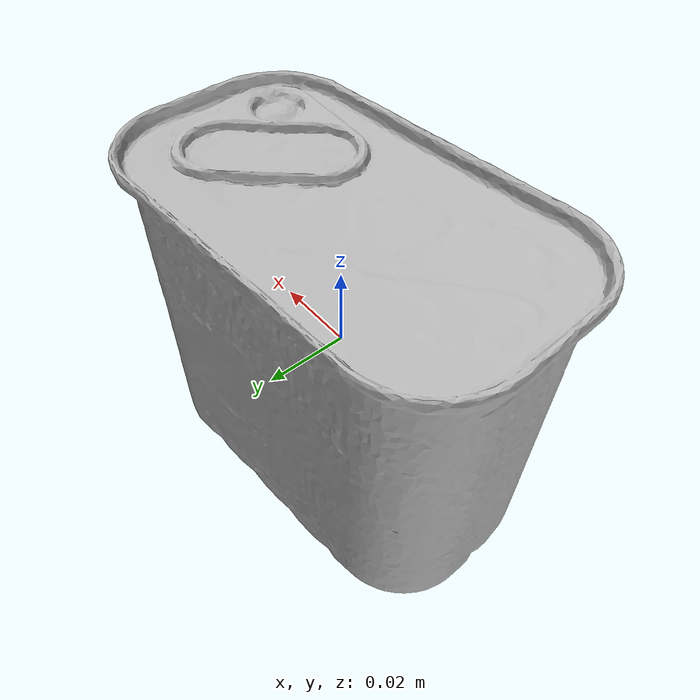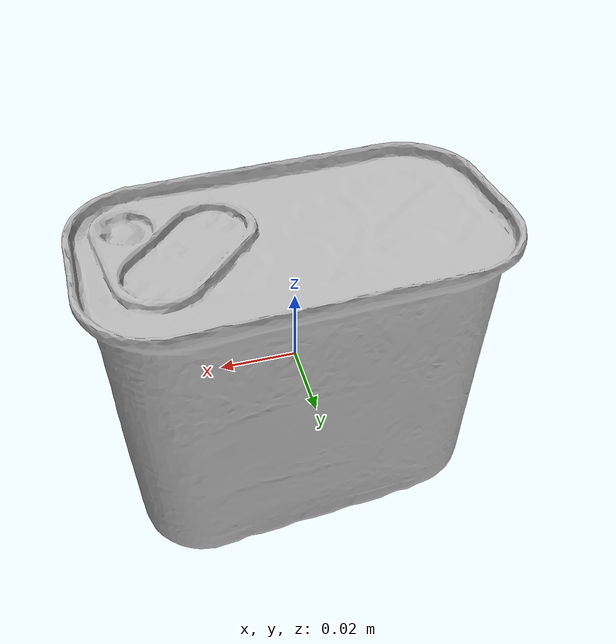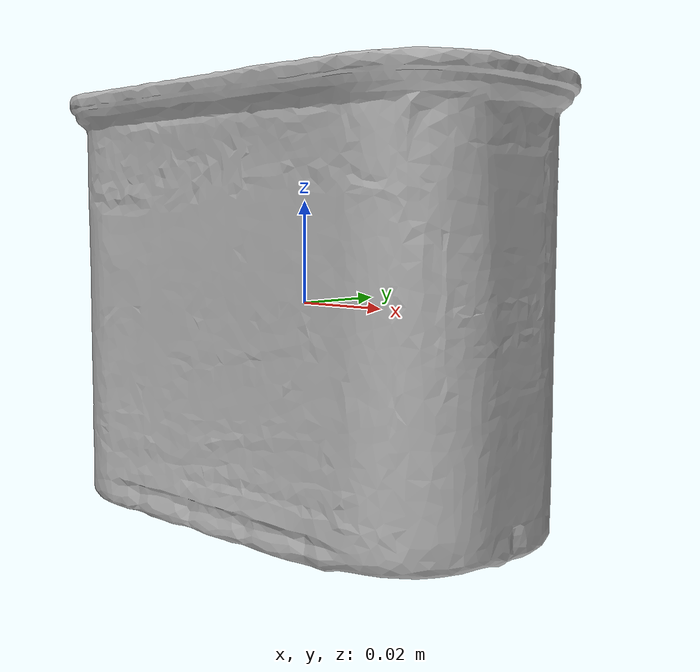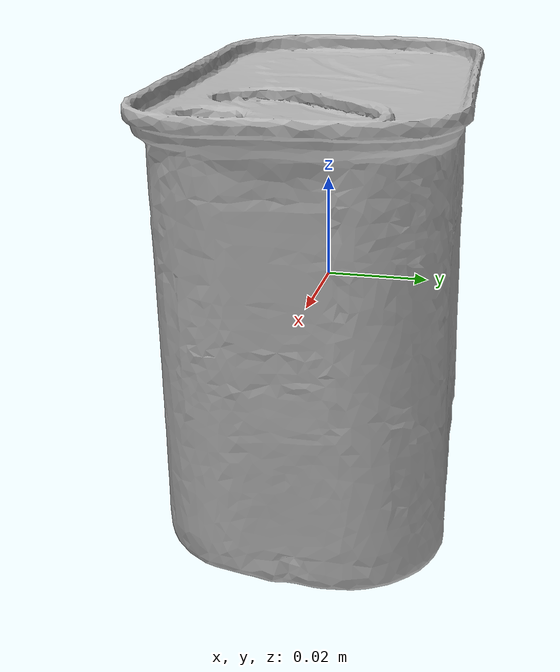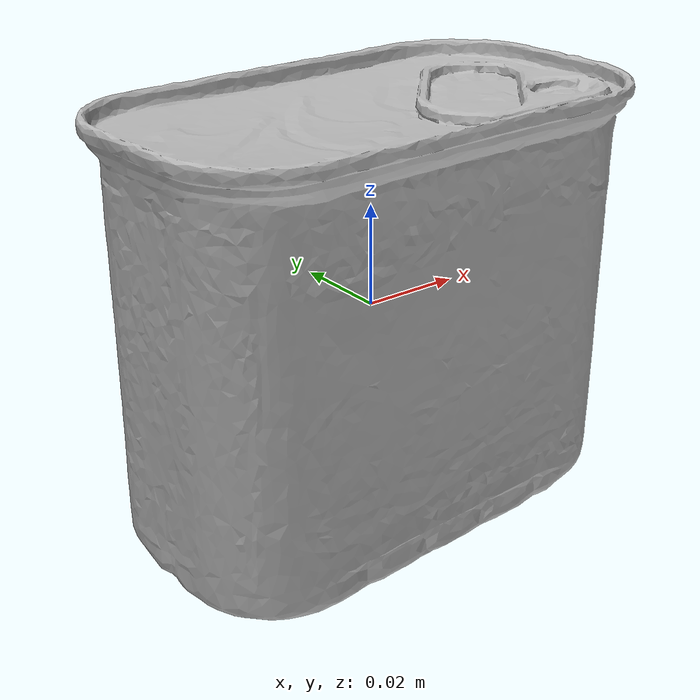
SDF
<?xml version="1.0" ?>
<!--
This SDF file was automatically generated using a template modified
and authored by Adwait Naik. The moment of interia is not supposed to be changed.
-->
<sdf version="1.7">
    <model name="meat_can">
        <pose>0 0 0 0 0 0</pose>
        <link name="link">
            <inertial>
                <inertia>
                    <ixx>0.5</ixx>
                    <ixy>0</ixy>
                    <ixz>0</ixz>
                    <iyy>0.7</iyy>
                    <iyz>0</iyz>
                    <izz>0.5</izz>
                </inertia>
                <mass>0.8</mass>
            </inertial>
            <collision name="collision">
                <geometry>
                    <mesh>
                        <uri>model://meat_can/textured.dae</uri>
                    </mesh>
                </geometry>
                <surface>
                  <contact>
                    <ode>
                      <min_depth>0.001</min_depth>
                      <max_vel>0.1</max_vel>
                    </ode>
                  </contact>
                  <friction>
                    <ode>
                      <mu>100.0</mu>
                      <mu2>100.0</mu2>
                    </ode>
                  </friction>
                </surface>
            </collision>
            <visual name="visual">
                <pose>0 0 0 0 0 0</pose>
                <geometry>
                    <mesh>
                        <uri>model://meat_can/textured.dae</uri>
                    </mesh>
                </geometry>
            </visual>
        </link>
    </model>
</sdf>
